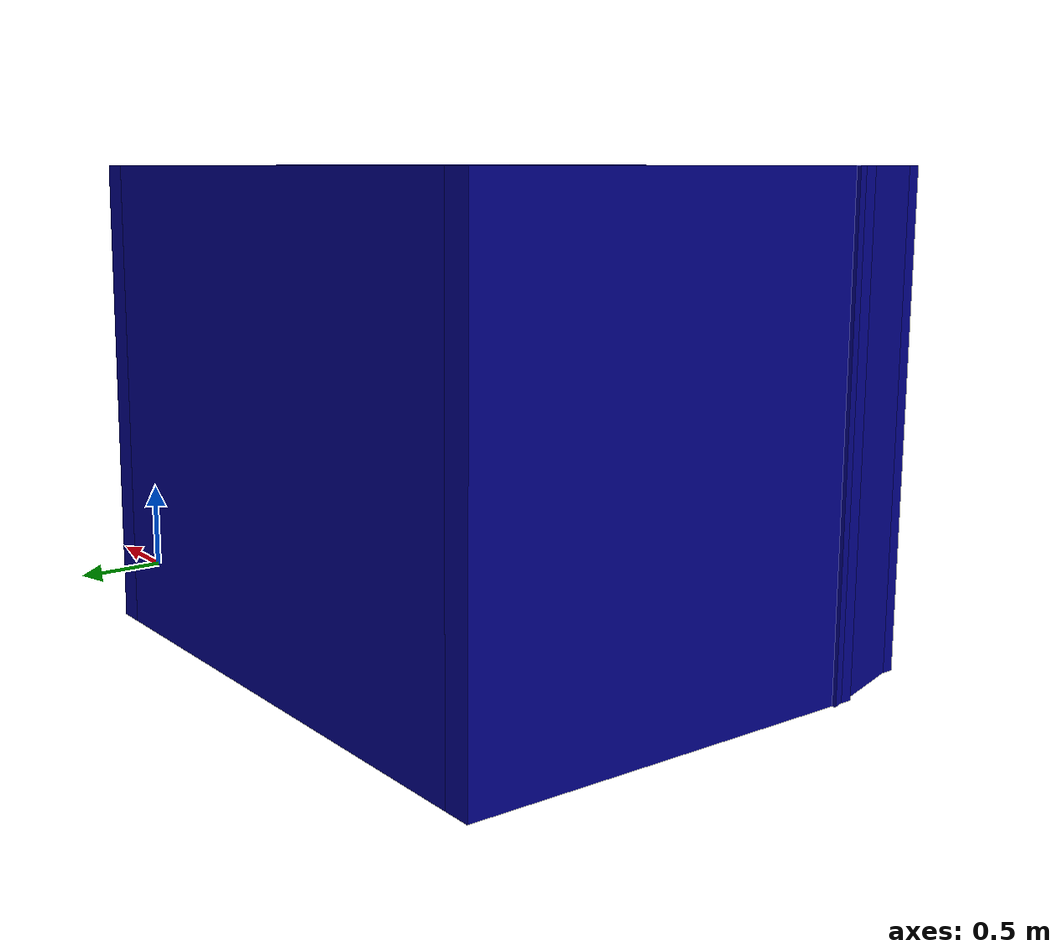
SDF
<?xml version='1.0'?>
<sdf version='1.6'>
  <model name='simple'>
    <pose frame=''>-2.49919 -0.799194 0 0 -0 0</pose>
    <link name='Wall_0'>
      <collision name='Wall_0_Collision'>
        <geometry>
          <box>
            <size>2.25 0.15 2.5</size>
          </box>
        </geometry>
        <pose frame=''>0 0 1.25 0 -0 0</pose>
      </collision>
      <visual name='Wall_0_Visual'>
        <pose frame=''>0 0 1.25 0 -0 0</pose>
        <geometry>
          <box>
            <size>2.25 0.15 2.5</size>
          </box>
        </geometry>
        <material>
          <script>
            <uri>file://media/materials/scripts/gazebo.material</uri>
            <name>Gazebo/Grey</name>
          </script>
          <ambient>0 0 0.498039 1</ambient>
        </material>
      </visual>
      <pose frame=''>-1.54081 0.259194 0 0 -0 1.5708</pose>
    </link>
    <link name='Wall_1'>
      <collision name='Wall_1_Collision'>
        <geometry>
          <box>
            <size>3.25 0.15 2.5</size>
          </box>
        </geometry>
        <pose frame=''>0 0 1.25 0 -0 0</pose>
      </collision>
      <visual name='Wall_1_Visual'>
        <pose frame=''>0 0 1.25 0 -0 0</pose>
        <geometry>
          <box>
            <size>3.25 0.15 2.5</size>
          </box>
        </geometry>
        <material>
          <script>
            <uri>file://media/materials/scripts/gazebo.material</uri>
            <name>Gazebo/Grey</name>
          </script>
          <ambient>0 0 0.498039 1</ambient>
        </material>
      </visual>
      <pose frame=''>0.009194 1.30919 0 0 -0 0</pose>
    </link>
    <link name='Wall_2'>
      <collision name='Wall_2_Collision'>
        <geometry>
          <box>
            <size>2.75 0.15 2.5</size>
          </box>
        </geometry>
        <pose frame=''>0 0 1.25 0 -0 0</pose>
      </collision>
      <visual name='Wall_2_Visual'>
        <pose frame=''>0 0 1.25 0 -0 0</pose>
        <geometry>
          <box>
            <size>2.75 0.15 2.5</size>
          </box>
        </geometry>
        <material>
          <script>
            <uri>file://media/materials/scripts/gazebo.material</uri>
            <name>Gazebo/Grey</name>
          </script>
          <ambient>0 0 0.498039 1</ambient>
        </material>
      </visual>
      <pose frame=''>1.55919 0.009194 0 0 0 -1.5708</pose>
    </link>
    <link name='Wall_3'>
      <collision name='Wall_3_Collision'>
        <geometry>
          <box>
            <size>1.5 0.15 2.5</size>
          </box>
        </geometry>
        <pose frame=''>0 0 1.25 0 -0 0</pose>
      </collision>
      <visual name='Wall_3_Visual'>
        <pose frame=''>0 0 1.25 0 -0 0</pose>
        <geometry>
          <box>
            <size>1.5 0.15 2.5</size>
          </box>
        </geometry>
        <material>
          <script>
            <uri>file://media/materials/scripts/gazebo.material</uri>
            <name>Gazebo/Grey</name>
          </script>
          <ambient>0 0 0.498039 1</ambient>
        </material>
      </visual>
      <pose frame=''>0.884194 -1.29081 0 0 -0 3.14159</pose>
    </link>
    <link name='Wall_4'>
      <collision name='Wall_4_Collision'>
        <geometry>
          <box>
            <size>1.75 0.15 2.5</size>
          </box>
        </geometry>
        <pose frame=''>0 0 1.25 0 -0 0</pose>
      </collision>
      <visual name='Wall_4_Visual'>
        <pose frame=''>0 0 1.25 0 -0 0</pose>
        <geometry>
          <box>
            <size>1.75 0.15 2.5</size>
          </box>
        </geometry>
        <material>
          <script>
            <uri>file://media/materials/scripts/gazebo.material</uri>
            <name>Gazebo/Grey</name>
          </script>
          <ambient>0 0 0.498039 1</ambient>
        </material>
      </visual>
      <pose frame=''>-0.590806 -1.29081 0 0 -0 3.14159</pose>
    </link>
    <link name='Wall_5'>
      <collision name='Wall_5_Collision'>
        <geometry>
          <box>
            <size>0.672015 0.15 2.5</size>
          </box>
        </geometry>
        <pose frame=''>0 0 1.25 0 -0 0</pose>
      </collision>
      <visual name='Wall_5_Visual'>
        <pose frame=''>0 0 1.25 0 -0 0</pose>
        <geometry>
          <box>
            <size>0.672015 0.15 2.5</size>
          </box>
        </geometry>
        <material>
          <script>
            <uri>file://media/materials/scripts/gazebo.material</uri>
            <name>Gazebo/Grey</name>
          </script>
          <ambient>0 0 0.498039 1</ambient>
        </material>
      </visual>
      <pose frame=''>-1.46581 -1.04081 0 0 -0 1.86225</pose>
    </link>
    <static>1</static>
  </model>
</sdf>
